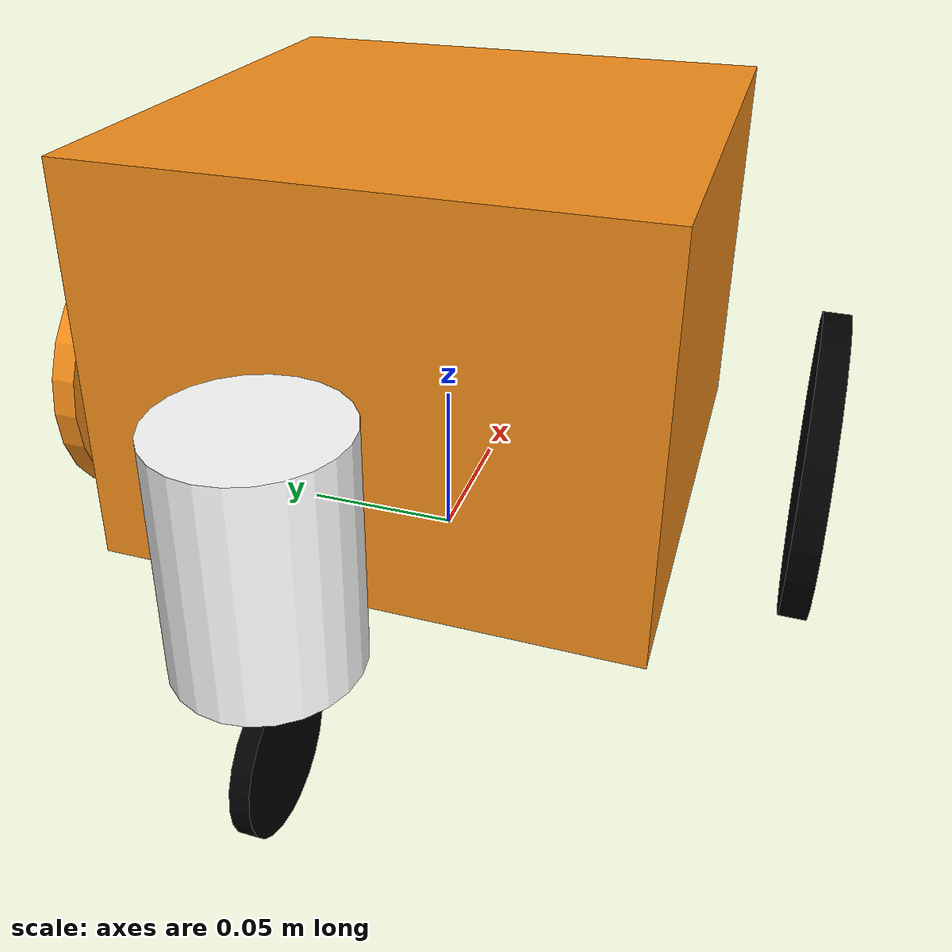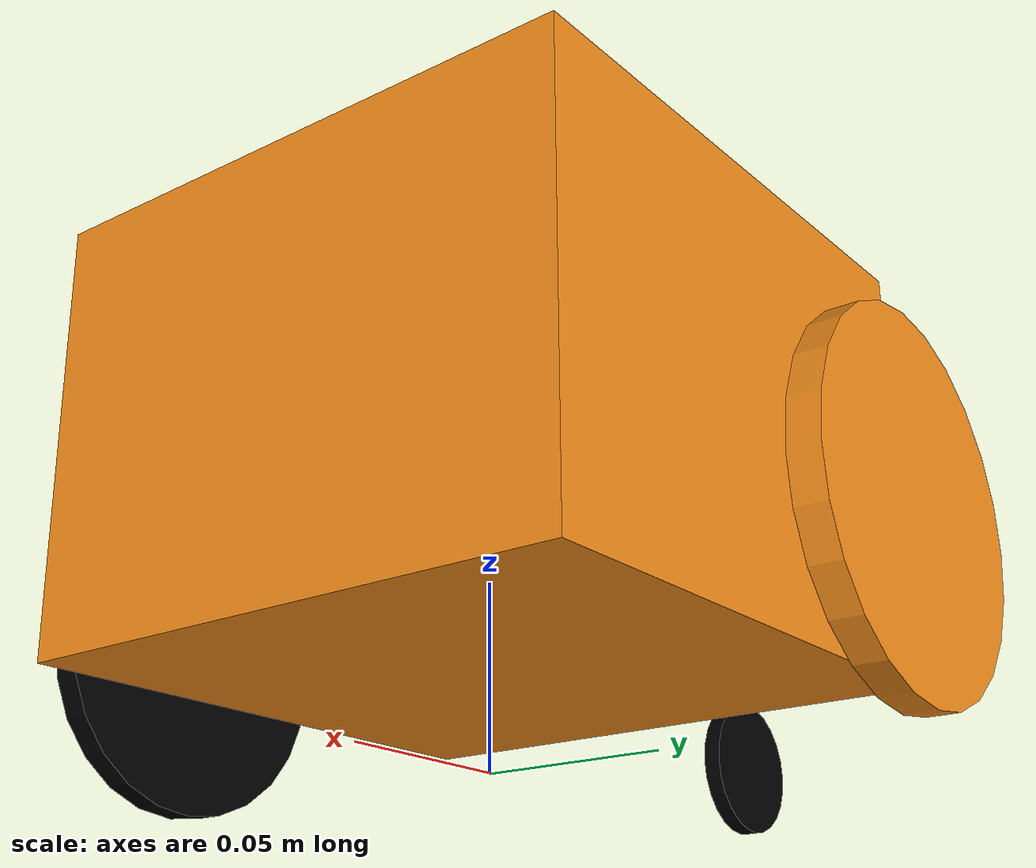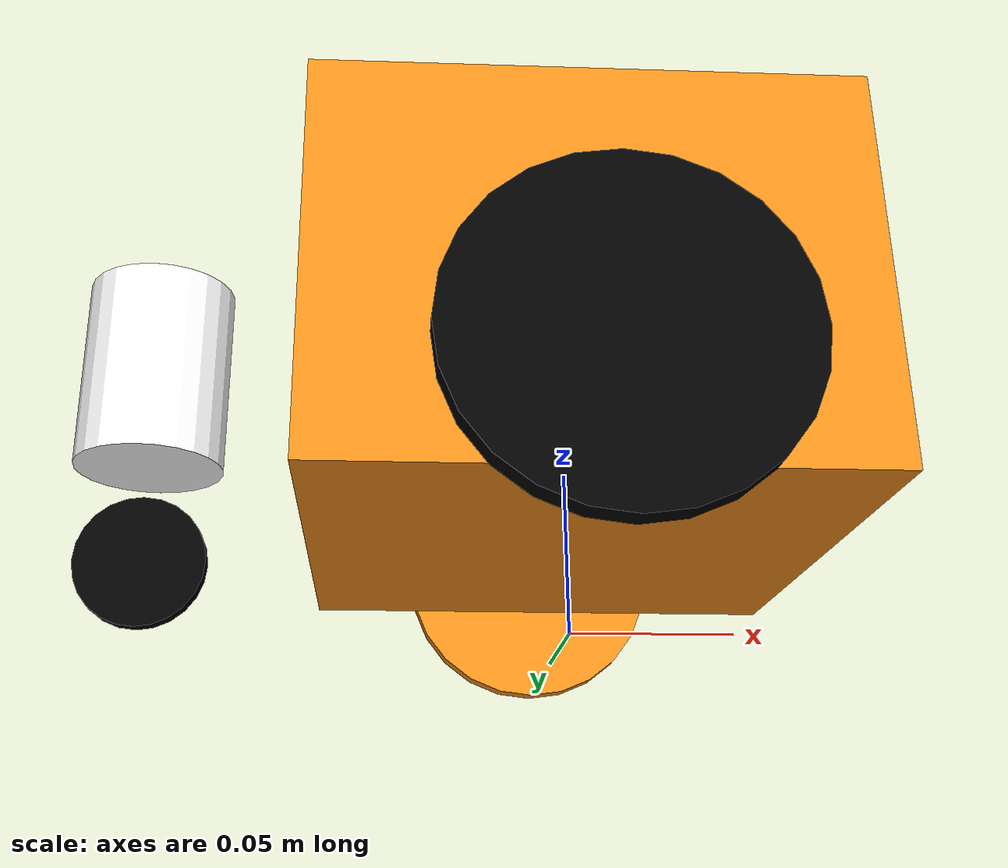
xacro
<?xml version="1.0"?>
<robot name="$(arg robot_name)" xmlns:xacro="http://www.ros.org/wiki/xacro">
  <xacro:property name="PI" value="3.1415926535897931"/>
  <xacro:property name="mass" value="50"/>

  <gazebo>
    <plugin name="gazebo_ros_control" filename="libgazebo_ros_control.so">
      <robotNamespace>$(arg robot_name)</robotNamespace>
      <robotSimType>gazebo_ros_control/DefaultRobotHWSim</robotSimType>
    </plugin>
  </gazebo>

  <gazebo reference="base_link">
    <material>Gazebo/Orange</material>
  </gazebo>

  <gazebo reference="rwheel">
    <mu1>200.2</mu1>
    <mu2>200.2</mu2>
    <material>Gazebo/Black</material>
  </gazebo>

  <gazebo reference="lwheel">
    <mu1>200.2</mu1>
    <mu2>200.2</mu2>
    <material>Gazebo/Black</material>
  </gazebo>

  <gazebo reference="fwheel">
    <mu1>0.0001</mu1>
    <mu2>0.0001</mu2>
  </gazebo>

  <xacro:include filename="$(find merlin_description)/urdf/materials.xacro" />

  <link name="world"/>

  <joint name="fixed" type="floating">
    <parent link="world"/>
    <child link="base_link"/>
  </joint>

  <link name="base_link">
    <visual>
      <geometry>
        <box size="0.16 0.16 0.12"/>
      </geometry>
      <origin rpy="0 0 0" xyz="0 0 0.085"/>
      <material name="orange"/>
    </visual>

    <collision>
      <geometry>
        <box size="0.16 0.16 0.12"/>
      </geometry>
      <origin rpy="0 0 0" xyz="0 0 0.085"/>
    </collision>

    <inertial>
      <mass value="${mass}"/>
      <inertia ixx="10.4" ixy="0.0" ixz="0.0" iyy="10.4" iyz="0.0" izz="10.2"/>
    </inertial>
  </link>

  <link name="lwheel">
    <visual>
      <geometry>
        <cylinder length="0.008" radius="0.046"/>
      </geometry>
      <origin rpy="0 0 0" xyz="0 0 0"/>
      <material name="orange"/>
    </visual>

    <collision>
      <geometry>
        <cylinder length="0.008" radius="0.046"/>
      </geometry>
      <origin rpy="0 0 0" xyz="0 0 0"/>
    </collision>

    <inertial>
      <mass value="${mass}"/>
      <inertia ixx="0.4" ixy="0.0" ixz="0.0" iyy="0.4" iyz="0.0" izz="0.2"/>
    </inertial>
  </link>

  <joint name="base_to_lwheel" type="continuous">
    <parent link="base_link"/>
    <child link="lwheel"/>
    <origin xyz="0 0.115 0.046" rpy="1.5708 0 3.14"/>
    <axis xyz="0 0 1"/>
    <dynamics damping="0.7"/>
  </joint>

  <link name="rwheel">
    <visual>
      <geometry>
        <cylinder length="0.008" radius="0.046"/>
      </geometry>
      <origin rpy="0 0 0" xyz="0 0 0"/>
      <material name="black">
        <color rgba="0 0 0 1"/>
      </material>
    </visual>

    <collision>
      <geometry>
        <cylinder length="0.008" radius="0.046"/>
      </geometry>
      <origin rpy="0 0 0" xyz="0 0 0"/>
    </collision>

    <inertial>
      <mass value="${mass}"/>
      <inertia ixx="0.4" ixy="0.0" ixz="0.0" iyy="0.4" iyz="0.0" izz="0.2"/>
    </inertial>
  </link>

  <joint name="base_to_rwheel" type="continuous">
    <parent link="base_link"/>
    <child link="rwheel"/>
    <origin xyz="0 -0.115 0.046" rpy="1.5708 0 3.14"/>
    <axis xyz="0 0 1"/>
    <dynamics damping="0.7"/>
  </joint>

  <link name="fwheel_attach">
    <visual>
      <geometry>
        <cylinder length="0.060" radius="0.023"/>
      </geometry>
      <origin rpy="0 0 0" xyz="-0.13 0 0.08"/>
      <material name="white">
        <color rgba="1 1 1 1"/>
      </material>
    </visual>

    <collision>
      <geometry>
        <cylinder length="0.060" radius="0.023"/>
      </geometry>
      <origin rpy="0 0 0" xyz="0.13 0 0.08"/>
    </collision>

    <inertial>
      <mass value="${mass}"/>
      <inertia ixx="0.4" ixy="0.0" ixz="0.0" iyy="0.4" iyz="0.0" izz="0.2"/>
    </inertial>
  </link>

  <joint name="base_to_fattach" type="fixed">
    <parent link="base_link"/>
    <child link="fwheel_attach"/>
    <origin xyz="0 0 0" rpy="0 0 0"/>
    <axis xyz="0 0 1"/>
  </joint>

  <link name="fwheel">
    <visual>
      <geometry>
        <cylinder length="0.005" radius="0.020"/>
      </geometry>
      <origin rpy="1.578 0 0" xyz="0 0 0"/>
      <material name="black">
        <color rgba="0 0 0 1"/>
      </material>
    </visual>

    <collision>
      <geometry>
        <cylinder length="0.005" radius="0.020"/>
      </geometry>
      <origin rpy="1.578 0 0" xyz="0 0 0"/>
    </collision>

    <inertial>
      <mass value="${mass}"/>
      <inertia ixx="0.4" ixy="0.0" ixz="0.0" iyy="0.4" iyz="0.0" izz="0.2"/>
    </inertial>
  </link>

  <joint name="base_to_fwheel" type="fixed">
    <parent link="base_link"/>
    <child link="fwheel"/>
    <origin xyz="-0.13 0 0.02" rpy="0 0 0"/>
    <axis xyz="0 1 0"/>
  </joint>

   <transmission name="tran1">
    <type>transmission_interface/SimpleTransmission</type>
    <joint name="base_to_lwheel">
      <hardwareInterface>VelocityJointInterface</hardwareInterface>
    </joint>
    <actuator name="motor1">
      <hardwareInterface>VelocityJointInterface</hardwareInterface>
      <mechanicalReduction>1</mechanicalReduction>
    </actuator>
  </transmission>

  <transmission name="tran2">
    <type>transmission_interface/SimpleTransmission</type>
    <joint name="base_to_rwheel">
      <hardwareInterface>VelocityJointInterface</hardwareInterface>
    </joint>
    <actuator name="motor2">
      <hardwareInterface>VelocityJointInterface</hardwareInterface>
      <mechanicalReduction>1</mechanicalReduction>
    </actuator>
  </transmission>

</robot>
